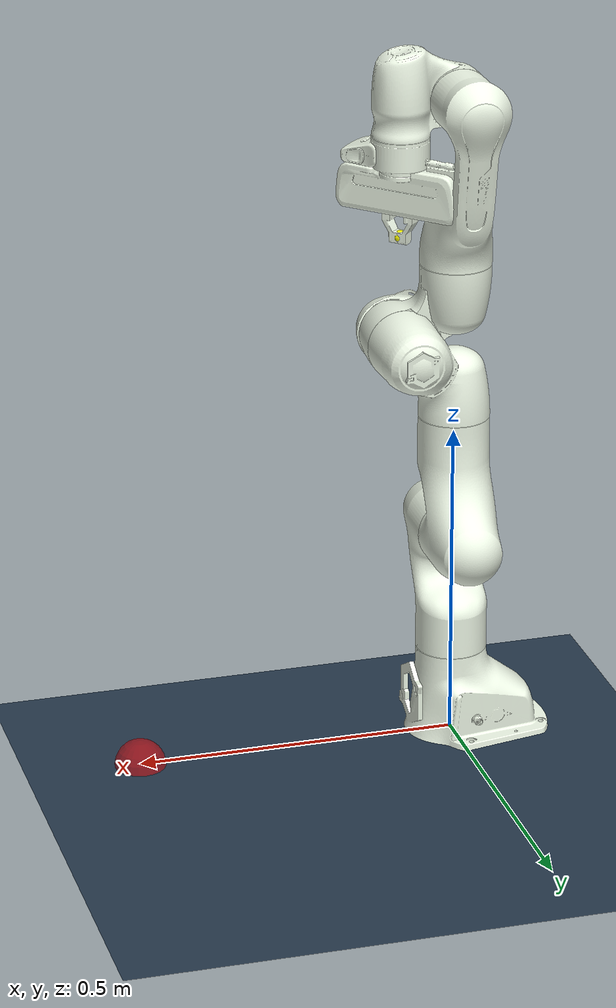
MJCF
<mujoco model="franka_panda v200">

    <include file="assets.xml"/>
    <include file='scene.xml'/>
    <compiler meshdir=""/>

    <worldbody>
        <include file="chain.xml"/>
        <include file="others_reach_site.xml"/>
    </worldbody>

    <include file='actuator_torque.xml'/>

    <size njmax="8000"/>

</mujoco>

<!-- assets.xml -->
<mujocoinclude>

    <compiler angle="radian"/>
    <option timestep="0.001" gravity="0 0 0" solver="PGS" iterations="50"/>
    <size nuser_actuator="5"/>

    <asset>
        <mesh name="link0_col" file="meshes/collision/link0.stl"/>
        <mesh name="link1_col" file="meshes/collision/link1.stl"/>
        <mesh name="link2_col" file="meshes/collision/link2.stl"/>
        <mesh name="link3_col" file="meshes/collision/link3.stl"/>
        <mesh name="link4_col" file="meshes/collision/link4.stl"/>
        <mesh name="link5_col" file="meshes/collision/link5.stl"/>
        <mesh name="link6_col" file="meshes/collision/link6.stl"/>
        <mesh name="link7_col" file="meshes/collision/link7.stl"/>
        <mesh name="hand_col" file="meshes/collision/hand.stl"/>
        <mesh name="finger_col" file="meshes/collision/finger.stl"/>
        <mesh name="link0_viz" file="meshes/visual/link0.stl"/>
        <mesh name="link1_viz" file="meshes/visual/link1.stl"/>
        <mesh name="link2_viz" file="meshes/visual/link2.stl"/>
        <mesh name="link3_viz" file="meshes/visual/link3.stl"/>
        <mesh name="link4_viz" file="meshes/visual/link4.stl"/>
        <mesh name="link5_viz" file="meshes/visual/link5.stl"/>
        <mesh name="link6_viz" file="meshes/visual/link6.stl"/>
        <mesh name="link7_viz" file="meshes/visual/link7.stl"/>
        <mesh name="hand_viz" file="meshes/visual/hand.stl"/>
        <mesh name="finger_viz" file="meshes/collision/finger.stl"/>
    </asset>

    <default>
        <default class="panda">
            <joint pos="0 0 0" axis="0 0 1" limited="true"/>
            <position forcelimited="true" ctrllimited="true" user="1002 40 2001 -0.005 0.005"/>
            <default class="panda_viz">
                <geom contype="0" conaffinity="0" group="0" type="mesh" rgba=".95 .99 .92 1" mass="0"/>
            </default>

            <default class="panda_col">
                <geom contype="1" conaffinity="1" group="3" type="mesh" rgba=".5 .6 .7 1"/>
            </default>
            <default class="panda_arm">
                <joint damping="100"/>
            </default>
             <default class="panda_forearm">
                <joint damping="10"/>
            </default>
             <default class="panda_finger">
                <joint damping="100" armature='5'/>
                <geom friction="1 0.5 0.0001" solref="0.01 1" solimp="0.8 0.9 0.001" margin="0.001" user="0" rgba="0.5 0.6 0.7 .4" contype="1" conaffinity="0" condim="6" group="3" />
                <position user="1002 40 2001 -0.0001 0.0001"/>
            </default>
        </default>

        <default class="panda_overlay">
            <joint limited="false" damping="1000" armature="1" frictionloss="10"/>
            <geom contype="0" conaffinity="0" group="2" type="mesh" rgba=".42 0.42 0.42 .5"/>
        </default>
    </default>

    <sensor>
        <jointpos name="fr_arm_jp1" joint="panda_joint1"/>
        <jointpos name="fr_arm_jp2" joint="panda_joint2"/>
        <jointpos name="fr_arm_jp3" joint="panda_joint3"/>
        <jointpos name="fr_arm_jp4" joint="panda_joint4"/>
        <jointpos name="fr_arm_jp5" joint="panda_joint5"/>
        <jointpos name="fr_arm_jp6" joint="panda_joint6"/>
        <jointpos name="fr_arm_jp7" joint="panda_joint7"/>
        <jointpos name="fr_fin_jp1" joint="panda_finger_joint1"/>
        <jointpos name="fr_fin_jp2" joint="panda_finger_joint2"/>
        <jointvel name="fr_arm_jv1" joint="panda_joint1"/>
        <jointvel name="fr_arm_jv2" joint="panda_joint2"/>
        <jointvel name="fr_arm_jv3" joint="panda_joint3"/>
        <jointvel name="fr_arm_jv4" joint="panda_joint4"/>
        <jointvel name="fr_arm_jv5" joint="panda_joint5"/>
        <jointvel name="fr_arm_jv6" joint="panda_joint6"/>
        <jointvel name="fr_arm_jv7" joint="panda_joint7"/>
        <jointvel name="fr_fin_jv1" joint="panda_finger_joint1"/>
        <jointvel name="fr_fin_jv2" joint="panda_finger_joint2"/>
    </sensor>

</mujocoinclude>

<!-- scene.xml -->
<mujocoinclude>
    <asset>
        <texture name="texplane" type="2d" builtin="checker" rgb1=".2 .3 .4" rgb2=".1 0.15 0.2"
                width="512" height="512"/>
        <material name="MatGnd" reflectance="0.5" texture="texplane" texrepeat="1 1" texuniform="true"/>
    </asset>

    <worldbody>
        <light directional="false" diffuse=".8 .8 .8" specular="0.3 0.3 0.3" pos="1  1 3" dir="-1 -1 -3"/>
        <light directional="false" diffuse=".8 .8 .8" specular="0.3 0.3 0.3" pos="1 -1 3" dir="-1 1 -3"/>
        <light directional="false" diffuse=".8 .8 .8" specular="0.3 0.3 0.3" pos="-1 0 3" dir="1 0 -3" />
        <geom name="ground" pos="0 0 0" size="5 5 10" material="MatGnd" type="plane" contype="1" conaffinity="1"/>
    </worldbody>
</mujocoinclude>

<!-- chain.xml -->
<mujocoinclude>

    <body name="panda_link0" childclass="panda">
        <inertial pos="0 0 0" quat="1 0 0 0" mass="3.06" diaginertia="0.3 0.3 0.3" />
        <geom class="panda_viz" mesh="link0_viz" />

        <body name="panda_link1" pos="0 0 0.333">
            <inertial pos="3.875e-03 2.081e-03 -0.1750" quat="1 0 0 0" mass="4.970684" fullinertia="0.5013272577674276 0.5036365691045143 0.0064981455124125806 -9.907230736265755e-05 0.004826745794675659 0.013662712660681874" />
            <joint name="panda_joint1" limited="true" range="-2.8973 2.8973" class="panda_arm" damping="0" frictionloss="0" />
            <geom class="panda_viz" mesh="link1_viz" />
            <geom class="panda_col" mesh="link1_col" />

            <body name="panda_link2" pos="0 0 0" quat="0.707107 -0.707107 0 0">
                <joint name="panda_joint2" limited="true" range="-1.7628 1.7628" class="panda_arm" damping="0" frictionloss="0" />
                <geom class="panda_viz" mesh="link2_viz" />
                <geom class="panda_col" mesh="link2_col" />
                <inertial pos="-3.141e-03 -2.872e-02 3.495e-03" quat="1 0 0 0" mass="0.646926" fullinertia="0.011426817444266086 0.040342607178889676 0.037307224248140765 -0.005633039245006833 0.014716225329503192 0.001010359141015238" />

                <body name="panda_link3" pos="0 -0.316 0" quat="0.707107 0.707107 0 0">
                    <joint name="panda_joint3" limited="true" range="-2.8973 2.8973" class="panda_arm" damping="0" frictionloss="0" />
                    <geom class="panda_viz" mesh="link3_viz" />
                    <geom class="panda_col" mesh="link3_col" />
                    <inertial pos="2.7518e-02 3.9252e-02 -6.6502e-02" quat="1 0 0 0" mass="3.228604" fullinertia="0.04204073154221103 0.04081366867806884 0.012225474534185736 -0.00537446761378193 -0.012864405151577163 -0.014454958578970306" />

                    <body name="panda_link4" pos="0.0825 0 0" quat="0.707107 0.707107 0 0">
                        <joint name="panda_joint4" limited="true" range="-3.0718 -0.0698" class="panda_arm" damping="0" frictionloss="0" />
                        <geom class="panda_viz" mesh="link4_viz" />
                        <geom class="panda_col" mesh="link4_col" />
                        <inertial pos="-5.317e-02 1.04419e-01 2.7454e-02" quat="1 0 0 0" mass="3.587895" fullinertia="0.026164493965538854 0.019787575368979054 0.02866425415177956 0.007889931340863375 -0.0013480488129848666 0.00874511245720889" />

                        <body name="panda_link5" pos="-0.0825 0.384 0" quat="0.707107 -0.707107 0 0">
                            <joint name="panda_joint5" limited="true" range="-2.8973 2.8973" class="panda_forearm" damping="0" frictionloss="0" />
                            <geom class="panda_viz" mesh="link5_viz" />
                            <geom class="panda_col" mesh="link5_col" />
                            <inertial pos="-1.1953e-02 4.1065e-02 -3.8437e-02" quat="1 0 0 0" mass="1.225946" fullinertia="0.040886479600249694 0.03389935299833355 0.009922294846869224 -0.00243485547592699 -0.004643132525421476 0.0002633830439240817" />

                            <body name="panda_link6" pos="0 0 0" quat="0.707107 0.707107 0 0">
                                <joint name="panda_joint6" limited="true" range="-0.0175 3.7525" class="panda_forearm" damping="0" frictionloss="0" />
                                <geom class="panda_viz" mesh="link6_viz" />
                                <geom class="panda_col" mesh="link6_col" />
                                <inertial pos="6.0149e-02 -1.4117e-02 -1.0517e-02" quat="1 0 0 0" mass="1.666555" fullinertia="0.0014861342167304052 0.0032946173012444917 0.004111083095466544 8.247893565357135e-05 -0.0008762441053838131 0.00025803043172355813" />

                                <body name="panda_link7" pos="0.088 0 0" quat="0.707107 0.707107 0 0">
                                    <joint name="panda_joint7" limited="true" range="-2.8973 2.8973" class="panda_forearm" damping="0" frictionloss="0" />
                                    <geom class="panda_viz" mesh="link7_viz" />
                                    <geom class="panda_col" mesh="link7_col" />
                                    <inertial pos="1.0517e-02 -4.252e-03 6.1597e-02" mass="7.35522e-01" fullinertia="0.0141643459469919 0.011347546884826443 0.005449131170882545 -0.00048436721518955994 -0.0013535121246885833 -0.0008385890337744477" />

                                    <geom pos="0 0 0.107" quat="0.92388 0 0 -0.382683" class="panda_viz" mesh="hand_viz" />
                                    <geom pos="0 0 0.107" quat="0.92388 0 0 -0.382683" class="panda_col" mesh="hand_col" />
                                    <site name="end_effector" pos="0 0 .210" size="0.01" euler="0 0 -0.785398" rgba="1 1 0 1" />

                                    <body name="panda_leftfinger" pos="0 0 0.1654" quat="0.92388 0 0 -0.382683" childclass="panda_finger">
                                        <inertial pos="0 0.0145644 0.0227941" euler="0 0 0" mass="0.1" diaginertia="3.01220925051e-05 2.95873808038e-05 6.95125211657e-06" />

                                        <joint name="panda_finger_joint1" axis="0 1 0" type="slide" class="panda_finger" limited="true" range="0 0.00001" damping="500" />
                                        <geom class="panda_viz" mesh="finger_viz" />

                                    </body>
                                    <body name="panda_rightfinger" pos="0 0 0.1654" quat="0.92388 0 0 -0.382683" childclass="panda_finger">
                                        <inertial pos="0 -0.0145644 0.0227941" quat="0 0 1 0" mass="0.1" diaginertia="3.01220925051e-05 2.95873808038e-05 6.95125211657e-06" />

                                        <joint name="panda_finger_joint2" axis="0 -1 0" type="slide" class="panda_finger" limited="true" range="0 0.00001" damping="500" />
                                        <geom quat="0 0 0 1" class="panda_viz" mesh="finger_viz" />

                                    </body>
                                </body>
                            </body>
                        </body>
                    </body>
                </body>
            </body>
        </body>
    </body>
</mujocoinclude>

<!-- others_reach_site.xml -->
<mujocoinclude>
    <site name='target_point' pos='0.5 0 0' size='0.04 0.04 0.04' type='sphere' rgba="1 0 0 0.5"/>
</mujocoinclude>

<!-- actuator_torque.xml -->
<mujocoinclude>

    <actuator>
        <motor name="panda_actuator_joint1" joint="panda_joint1" class="panda" forcelimited="false" ctrllimited="true" ctrlrange="-100 100" gear="1"/> <!-- velocity="2.1750" -->
        <motor name="panda_actuator_joint2" joint="panda_joint2" class="panda" forcelimited="false" ctrllimited="true" ctrlrange="-300 300" gear="1"/> <!-- velocity="2.1750" -->
        <motor name="panda_actuator_joint3" joint="panda_joint3" class="panda" forcelimited="false" ctrllimited="true" ctrlrange="-100 100" gear="1"/> <!-- velocity="2.1750" -->
        <motor name="panda_actuator_joint4" joint="panda_joint4" class="panda" forcelimited="false" ctrllimited="true" ctrlrange="-300 300" gear="1"/> <!-- velocity="2.1750" -->
        <motor name="panda_actuator_joint5" joint="panda_joint5" class="panda" forcelimited="false" ctrllimited="true" ctrlrange="-20 20" gear="1"/> <!-- velocity="2.61000" -->
        <motor name="panda_actuator_joint6" joint="panda_joint6" class="panda" forcelimited="false" ctrllimited="true" ctrlrange="-20 20" gear="1"/> <!-- velocity="2.61000" -->
        <motor name="panda_actuator_joint7" joint="panda_joint7" class="panda" forcelimited="false" ctrllimited="true" ctrlrange="-20 20" gear="1"/> <!-- velocity="2.9671" -->
        <position name="panda_actuator_finger_joint1" joint="panda_finger_joint1" class="panda_finger" forcerange="-70 70" ctrlrange="0 0.04"/> <!-- velocity=".2" -->
        <position name="panda_actuator_finger_joint2" joint="panda_finger_joint2" class="panda_finger" forcerange="-70 70" ctrlrange="0 0.04"/> <!-- velocity=".2" -->
    </actuator>

</mujocoinclude>
